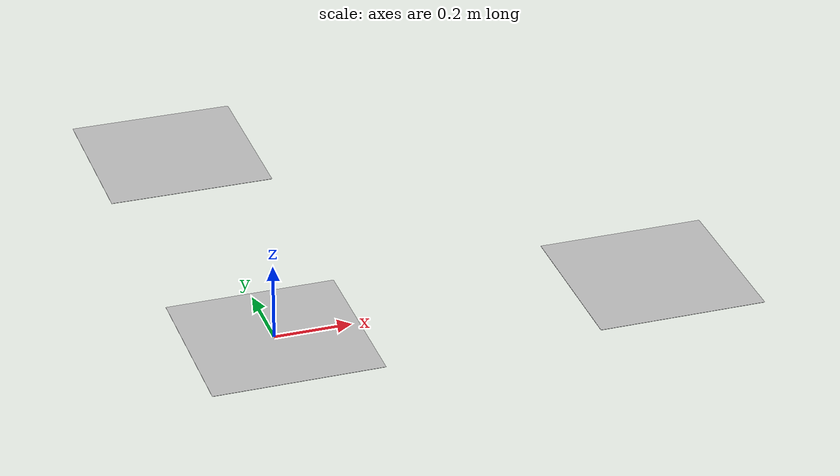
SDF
<sdf version="1.5">
 <world name="default">
  <include><uri>model://aruco_2_4</uri></include>
  <include><uri>model://aruco_2_3</uri><pose>0.0 1.0 0.0 0.0 0.0 0.0</pose></include>
  <include><uri>model://aruco_2_2</uri><pose>1.0 0.0 0.0 0.0 0.0 0.0</pose></include>
  <include><uri>model://aruco_2_1</uri></include>
  <include><uri>model://sun</uri></include>
  <scene>
   <ambient>0.8 0.8 0.8 1</ambient>
   <background>0.8 0.9 1 1</background>
   <shadows>false</shadows>
   <grid>false</grid>
   <origin_visual>false</origin_visual>
  </scene>
  <physics default="0" name="default_physics" type="ode">
   <gravity>0 0 -9.8066</gravity>
   <ode>
    <solver>
     <type>quick</type>
     <iters>10</iters>
     <sor>1.3</sor>
     <use_dynamic_moi_rescaling>0</use_dynamic_moi_rescaling>
    </solver>
    <constraints>
     <cfm>0</cfm>
     <erp>0.2</erp>
     <contact_max_correcting_vel>100</contact_max_correcting_vel>
     <contact_surface_layer>0.001</contact_surface_layer>
    </constraints>
   </ode>
   <max_step_size>0.004</max_step_size>
   <real_time_factor>1</real_time_factor>
   <real_time_update_rate>250</real_time_update_rate>
   <magnetic_field>6.0e-6 2.3e-5 -4.2e-5</magnetic_field>
  </physics>
 </world>
</sdf>

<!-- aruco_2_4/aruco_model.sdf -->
<sdf version="1.5">
    <model name="aruco_2_1">
        <static>true</static>
        <link name="aruco_2_1_link">

<visual name="visual_marker_2_4">
    <pose>0 0 0 0 0 1.57079632679</pose>
    <cast_shadows>false</cast_shadows>
    <geometry>
        <box>
            <size>0.44 0.44 1e-3</size>
        </box>
    </geometry>
    <material>
        <script>
            <uri>model://aruco_2_4/materials/scripts</uri>
            <uri>model://aruco_2_4/materials/textures</uri>
            <name>aruco/marker_2_4</name>
        </script>
    </material>
</visual>

        </link>
    </model>
</sdf>

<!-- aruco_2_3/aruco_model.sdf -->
<sdf version="1.5">
    <model name="aruco_2_1">
        <static>true</static>
        <link name="aruco_2_1_link">

<visual name="visual_marker_2_3">
    <pose>0 0 0 0 0 1.57079632679</pose>
    <cast_shadows>false</cast_shadows>
    <geometry>
        <box>
            <size>0.44 0.44 1e-3</size>
        </box>
    </geometry>
    <material>
        <script>
            <uri>model://aruco_2_3/materials/scripts</uri>
            <uri>model://aruco_2_3/materials/textures</uri>
            <name>aruco/marker_2_3</name>
        </script>
    </material>
</visual>

        </link>
    </model>
</sdf>

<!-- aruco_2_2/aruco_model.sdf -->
<sdf version="1.5">
    <model name="aruco_2_1">
        <static>true</static>
        <link name="aruco_2_1_link">

<visual name="visual_marker_2_2">
    <pose>0 0 0 0 0 1.57079632679</pose>
    <cast_shadows>false</cast_shadows>
    <geometry>
        <box>
            <size>0.44 0.44 1e-3</size>
        </box>
    </geometry>
    <material>
        <script>
            <uri>model://aruco_2_2/materials/scripts</uri>
            <uri>model://aruco_2_2/materials/textures</uri>
            <name>aruco/marker_2_2</name>
        </script>
    </material>
</visual>

        </link>
    </model>
</sdf>

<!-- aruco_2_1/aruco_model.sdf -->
<sdf version="1.5">
    <model name="aruco_2_1">
        <static>true</static>
        <link name="aruco_2_1_link">

<visual name="visual_marker_2_1">
    <pose>0 0 0 0 0 1.57079632679</pose>
    <cast_shadows>false</cast_shadows>
    <geometry>
        <box>
            <size>0.44 0.44 1e-3</size>
        </box>
    </geometry>
    <material>
        <script>
            <uri>model://aruco_2_1/materials/scripts</uri>
            <uri>model://aruco_2_1/materials/textures</uri>
            <name>aruco/marker_2_1</name>
        </script>
    </material>
</visual>

        </link>
    </model>
</sdf>
